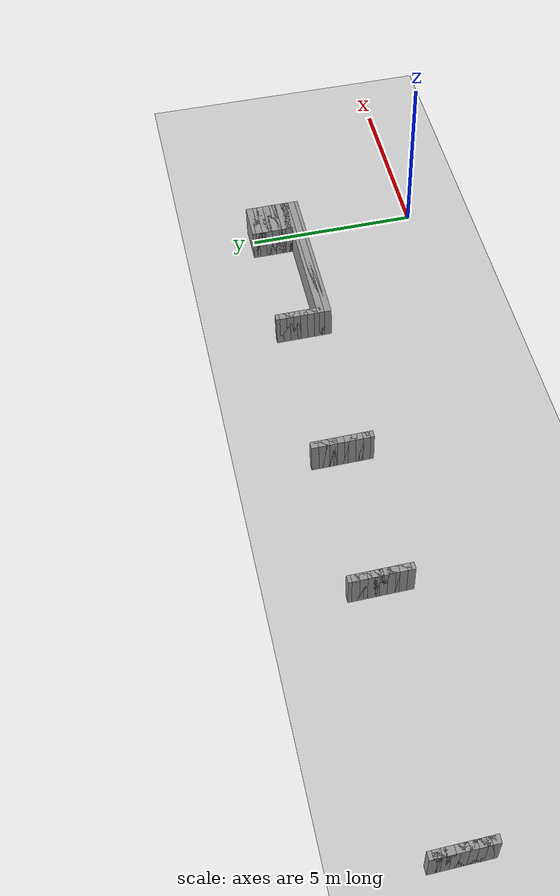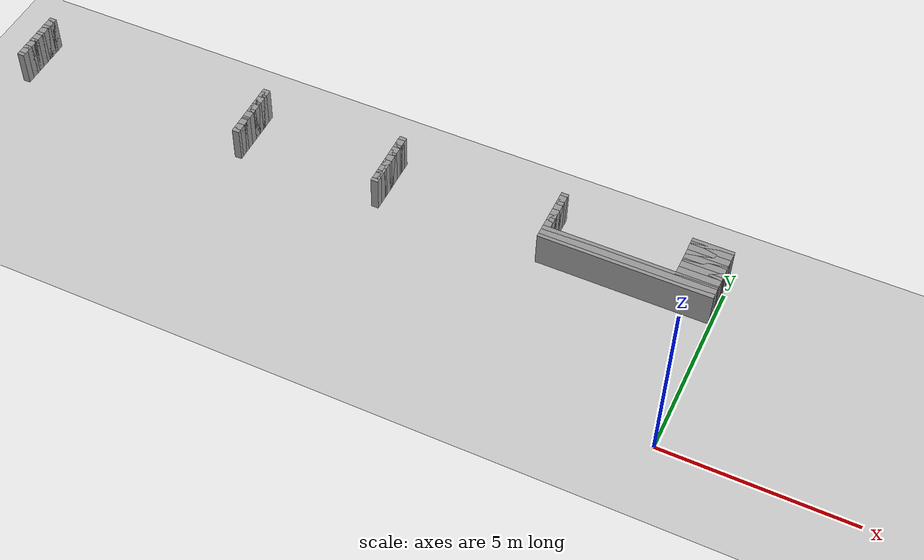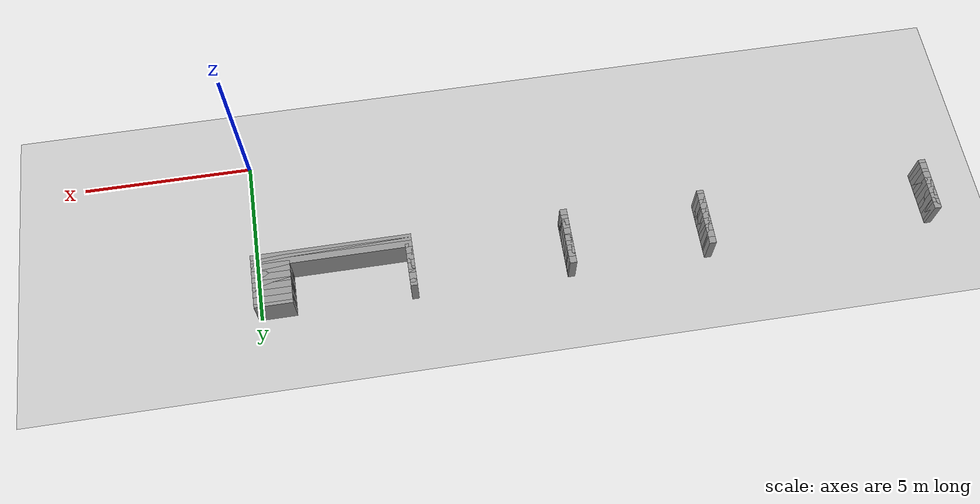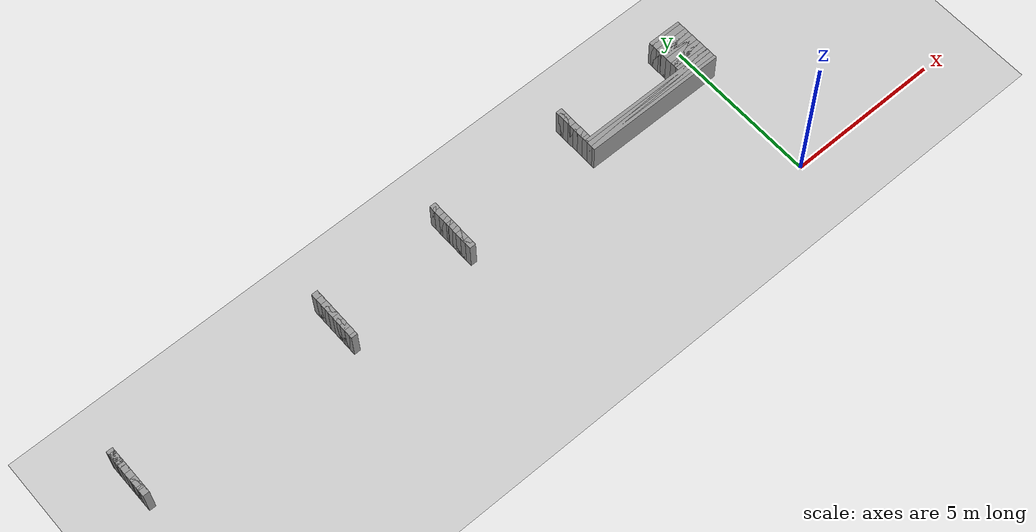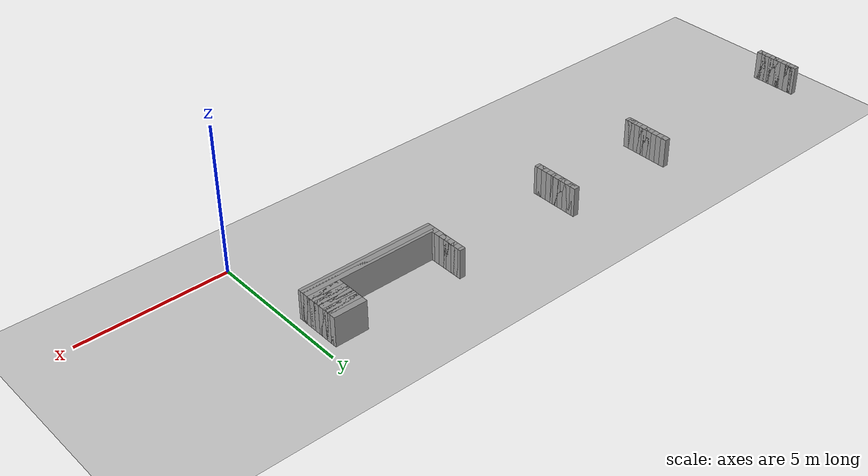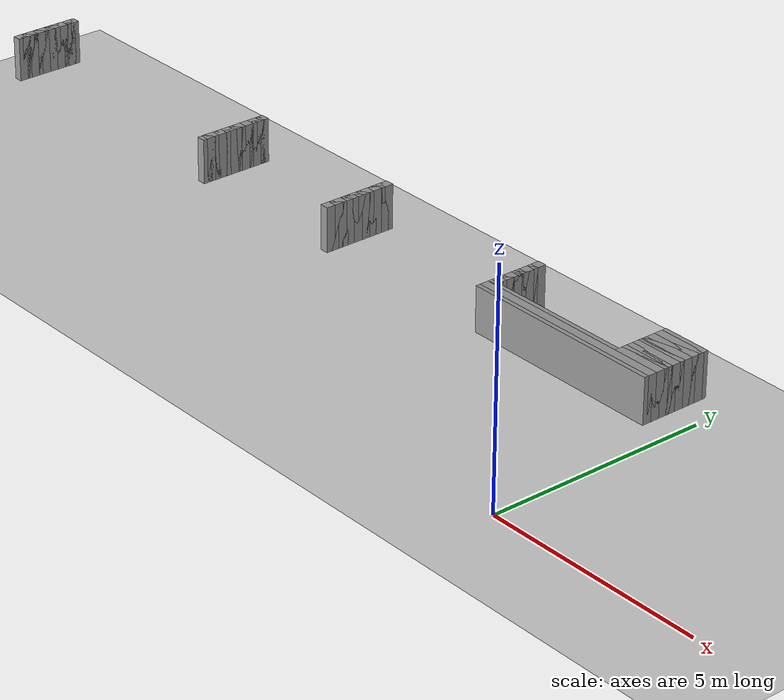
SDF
<sdf version="1.6">
 <world name="GridMap">
  <include><uri>model://sun</uri></include>
  <include><uri>model://ground_plane</uri></include>
  <model name="GridMap">
   <link name="Wall_(90.5,36.0)">
    <collision name="Wall_(90.5,36.0)_Collision">
     <geometry><box><size>0.2 0.2 1.0</size></box></geometry>
     <pose>-9.05 3.6 0.5 0 -0 0</pose>
    </collision>
    <visual name="Wall_(90.5,36.0)_Visual">
     <geometry><box><size>0.2 0.2 1.0</size></box></geometry>
     <pose>-9.05 3.6 0.5 0 -0 0</pose>
     <material>
      <script><uri>file://media/materials/scripts/gazebo.material</uri><name>Gazebo/Grey</name></script>
      <ambient>1 1 1 1</ambient>
     </material>
     <meta><layer>0</layer></meta>
    </visual>
    <pose>0 0 0.5 0 -0 0</pose>
   </link>
   <link name="Wall_(131.0,36.0)">
    <collision name="Wall_(131.0,36.0)_Collision">
     <geometry><box><size>0.2 0.2 1.0</size></box></geometry>
     <pose>-13.100000000000001 3.6 0.5 0 -0 0</pose>
    </collision>
    <visual name="Wall_(131.0,36.0)_Visual">
     <geometry><box><size>0.2 0.2 1.0</size></box></geometry>
     <pose>-13.100000000000001 3.6 0.5 0 -0 0</pose>
     <material>
      <script><uri>file://media/materials/scripts/gazebo.material</uri><name>Gazebo/Grey</name></script>
      <ambient>1 1 1 1</ambient>
     </material>
     <meta><layer>0</layer></meta>
    </visual>
    <pose>0 0 0.5 0 -0 0</pose>
   </link>
   <link name="Wall_(198.0,36.0)">
    <collision name="Wall_(198.0,36.0)_Collision">
     <geometry><box><size>0.2 0.2 1.0</size></box></geometry>
     <pose>-19.8 3.6 0.5 0 -0 0</pose>
    </collision>
    <visual name="Wall_(198.0,36.0)_Visual">
     <geometry><box><size>0.2 0.2 1.0</size></box></geometry>
     <pose>-19.8 3.6 0.5 0 -0 0</pose>
     <material>
      <script><uri>file://media/materials/scripts/gazebo.material</uri><name>Gazebo/Grey</name></script>
      <ambient>1 1 1 1</ambient>
     </material>
     <meta><layer>0</layer></meta>
    </visual>
    <pose>0 0 0.5 0 -0 0</pose>
   </link>
   <link name="Wall_(23.0,37.0)">
    <collision name="Wall_(23.0,37.0)_Collision">
     <geometry><box><size>4.6000000000000005 0.2 1.0</size></box></geometry>
     <pose>-2.3000000000000003 3.7 0.5 0 -0 0</pose>
    </collision>
    <visual name="Wall_(23.0,37.0)_Visual">
     <geometry><box><size>4.6000000000000005 0.2 1.0</size></box></geometry>
     <pose>-2.3000000000000003 3.7 0.5 0 -0 0</pose>
     <material>
      <script><uri>file://media/materials/scripts/gazebo.material</uri><name>Gazebo/Grey</name></script>
      <ambient>1 1 1 1</ambient>
     </material>
     <meta><layer>0</layer></meta>
    </visual>
    <pose>0 0 0.5 0 -0 0</pose>
   </link>
   <link name="Wall_(90.5,37.0)">
    <collision name="Wall_(90.5,37.0)_Collision">
     <geometry><box><size>0.2 0.2 1.0</size></box></geometry>
     <pose>-9.05 3.7 0.5 0 -0 0</pose>
    </collision>
    <visual name="Wall_(90.5,37.0)_Visual">
     <geometry><box><size>0.2 0.2 1.0</size></box></geometry>
     <pose>-9.05 3.7 0.5 0 -0 0</pose>
     <material>
      <script><uri>file://media/materials/scripts/gazebo.material</uri><name>Gazebo/Grey</name></script>
      <ambient>1 1 1 1</ambient>
     </material>
     <meta><layer>0</layer></meta>
    </visual>
    <pose>0 0 0.5 0 -0 0</pose>
   </link>
   <link name="Wall_(131.0,37.0)">
    <collision name="Wall_(131.0,37.0)_Collision">
     <geometry><box><size>0.2 0.2 1.0</size></box></geometry>
     <pose>-13.100000000000001 3.7 0.5 0 -0 0</pose>
    </collision>
    <visual name="Wall_(131.0,37.0)_Visual">
     <geometry><box><size>0.2 0.2 1.0</size></box></geometry>
     <pose>-13.100000000000001 3.7 0.5 0 -0 0</pose>
     <material>
      <script><uri>file://media/materials/scripts/gazebo.material</uri><name>Gazebo/Grey</name></script>
      <ambient>1 1 1 1</ambient>
     </material>
     <meta><layer>0</layer></meta>
    </visual>
    <pose>0 0 0.5 0 -0 0</pose>
   </link>
   <link name="Wall_(198.0,37.0)">
    <collision name="Wall_(198.0,37.0)_Collision">
     <geometry><box><size>0.2 0.2 1.0</size></box></geometry>
     <pose>-19.8 3.7 0.5 0 -0 0</pose>
    </collision>
    <visual name="Wall_(198.0,37.0)_Visual">
     <geometry><box><size>0.2 0.2 1.0</size></box></geometry>
     <pose>-19.8 3.7 0.5 0 -0 0</pose>
     <material>
      <script><uri>file://media/materials/scripts/gazebo.material</uri><name>Gazebo/Grey</name></script>
      <ambient>1 1 1 1</ambient>
     </material>
     <meta><layer>0</layer></meta>
    </visual>
    <pose>0 0 0.5 0 -0 0</pose>
   </link>
   <link name="Wall_(23.0,38.0)">
    <collision name="Wall_(23.0,38.0)_Collision">
     <geometry><box><size>4.6000000000000005 0.2 1.0</size></box></geometry>
     <pose>-2.3000000000000003 3.8000000000000003 0.5 0 -0 0</pose>
    </collision>
    <visual name="Wall_(23.0,38.0)_Visual">
     <geometry><box><size>4.6000000000000005 0.2 1.0</size></box></geometry>
     <pose>-2.3000000000000003 3.8000000000000003 0.5 0 -0 0</pose>
     <material>
      <script><uri>file://media/materials/scripts/gazebo.material</uri><name>Gazebo/Grey</name></script>
      <ambient>1 1 1 1</ambient>
     </material>
     <meta><layer>0</layer></meta>
    </visual>
    <pose>0 0 0.5 0 -0 0</pose>
   </link>
   <link name="Wall_(90.5,38.0)">
    <collision name="Wall_(90.5,38.0)_Collision">
     <geometry><box><size>0.2 0.2 1.0</size></box></geometry>
     <pose>-9.05 3.8000000000000003 0.5 0 -0 0</pose>
    </collision>
    <visual name="Wall_(90.5,38.0)_Visual">
     <geometry><box><size>0.2 0.2 1.0</size></box></geometry>
     <pose>-9.05 3.8000000000000003 0.5 0 -0 0</pose>
     <material>
      <script><uri>file://media/materials/scripts/gazebo.material</uri><name>Gazebo/Grey</name></script>
      <ambient>1 1 1 1</ambient>
     </material>
     <meta><layer>0</layer></meta>
    </visual>
    <pose>0 0 0.5 0 -0 0</pose>
   </link>
   <link name="Wall_(131.0,38.0)">
    <collision name="Wall_(131.0,38.0)_Collision">
     <geometry><box><size>0.2 0.2 1.0</size></box></geometry>
     <pose>-13.100000000000001 3.8000000000000003 0.5 0 -0 0</pose>
    </collision>
    <visual name="Wall_(131.0,38.0)_Visual">
     <geometry><box><size>0.2 0.2 1.0</size></box></geometry>
     <pose>-13.100000000000001 3.8000000000000003 0.5 0 -0 0</pose>
     <material>
      <script><uri>file://media/materials/scripts/gazebo.material</uri><name>Gazebo/Grey</name></script>
      <ambient>1 1 1 1</ambient>
     </material>
     <meta><layer>0</layer></meta>
    </visual>
    <pose>0 0 0.5 0 -0 0</pose>
   </link>
   <link name="Wall_(198.0,38.0)">
    <collision name="Wall_(198.0,38.0)_Collision">
     <geometry><box><size>0.2 0.2 1.0</size></box></geometry>
     <pose>-19.8 3.8000000000000003 0.5 0 -0 0</pose>
    </collision>
    <visual name="Wall_(198.0,38.0)_Visual">
     <geometry><box><size>0.2 0.2 1.0</size></box></geometry>
     <pose>-19.8 3.8000000000000003 0.5 0 -0 0</pose>
     <material>
      <script><uri>file://media/materials/scripts/gazebo.material</uri><name>Gazebo/Grey</name></script>
      <ambient>1 1 1 1</ambient>
     </material>
     <meta><layer>0</layer></meta>
    </visual>
    <pose>0 0 0.5 0 -0 0</pose>
   </link>
   <link name="Wall_(23.0,39.0)">
    <collision name="Wall_(23.0,39.0)_Collision">
     <geometry><box><size>4.6000000000000005 0.2 1.0</size></box></geometry>
     <pose>-2.3000000000000003 3.9000000000000004 0.5 0 -0 0</pose>
    </collision>
    <visual name="Wall_(23.0,39.0)_Visual">
     <geometry><box><size>4.6000000000000005 0.2 1.0</size></box></geometry>
     <pose>-2.3000000000000003 3.9000000000000004 0.5 0 -0 0</pose>
     <material>
      <script><uri>file://media/materials/scripts/gazebo.material</uri><name>Gazebo/Grey</name></script>
      <ambient>1 1 1 1</ambient>
     </material>
     <meta><layer>0</layer></meta>
    </visual>
    <pose>0 0 0.5 0 -0 0</pose>
   </link>
   <link name="Wall_(90.5,39.0)">
    <collision name="Wall_(90.5,39.0)_Collision">
     <geometry><box><size>0.2 0.2 1.0</size></box></geometry>
     <pose>-9.05 3.9000000000000004 0.5 0 -0 0</pose>
    </collision>
    <visual name="Wall_(90.5,39.0)_Visual">
     <geometry><box><size>0.2 0.2 1.0</size></box></geometry>
     <pose>-9.05 3.9000000000000004 0.5 0 -0 0</pose>
     <material>
      <script><uri>file://media/materials/scripts/gazebo.material</uri><name>Gazebo/Grey</name></script>
      <ambient>1 1 1 1</ambient>
     </material>
     <meta><layer>0</layer></meta>
    </visual>
    <pose>0 0 0.5 0 -0 0</pose>
   </link>
   <link name="Wall_(131.0,39.0)">
    <collision name="Wall_(131.0,39.0)_Collision">
     <geometry><box><size>0.2 0.2 1.0</size></box></geometry>
     <pose>-13.100000000000001 3.9000000000000004 0.5 0 -0 0</pose>
    </collision>
    <visual name="Wall_(131.0,39.0)_Visual">
     <geometry><box><size>0.2 0.2 1.0</size></box></geometry>
     <pose>-13.100000000000001 3.9000000000000004 0.5 0 -0 0</pose>
     <material>
      <script><uri>file://media/materials/scripts/gazebo.material</uri><name>Gazebo/Grey</name></script>
      <ambient>1 1 1 1</ambient>
     </material>
     <meta><layer>0</layer></meta>
    </visual>
    <pose>0 0 0.5 0 -0 0</pose>
   </link>
   <link name="Wall_(198.0,39.0)">
    <collision name="Wall_(198.0,39.0)_Collision">
     <geometry><box><size>0.2 0.2 1.0</size></box></geometry>
     <pose>-19.8 3.9000000000000004 0.5 0 -0 0</pose>
    </collision>
    <visual name="Wall_(198.0,39.0)_Visual">
     <geometry><box><size>0.2 0.2 1.0</size></box></geometry>
     <pose>-19.8 3.9000000000000004 0.5 0 -0 0</pose>
     <material>
      <script><uri>file://media/materials/scripts/gazebo.material</uri><name>Gazebo/Grey</name></script>
      <ambient>1 1 1 1</ambient>
     </material>
     <meta><layer>0</layer></meta>
    </visual>
    <pose>0 0 0.5 0 -0 0</pose>
   </link>
   <link name="Wall_(5.5,40.0)">
    <collision name="Wall_(5.5,40.0)_Collision">
     <geometry><box><size>1.1 0.2 1.0</size></box></geometry>
     <pose>-0.55 4.0 0.5 0 -0 0</pose>
    </collision>
    <visual name="Wall_(5.5,40.0)_Visual">
     <geometry><box><size>1.1 0.2 1.0</size></box></geometry>
     <pose>-0.55 4.0 0.5 0 -0 0</pose>
     <material>
      <script><uri>file://media/materials/scripts/gazebo.material</uri><name>Gazebo/Grey</name></script>
      <ambient>1 1 1 1</ambient>
     </material>
     <meta><layer>0</layer></meta>
    </visual>
    <pose>0 0 0.5 0 -0 0</pose>
   </link>
   <link name="Wall_(45.0,40.0)">
    <collision name="Wall_(45.0,40.0)_Collision">
     <geometry><box><size>0.2 0.2 1.0</size></box></geometry>
     <pose>-4.5 4.0 0.5 0 -0 0</pose>
    </collision>
    <visual name="Wall_(45.0,40.0)_Visual">
     <geometry><box><size>0.2 0.2 1.0</size></box></geometry>
     <pose>-4.5 4.0 0.5 0 -0 0</pose>
     <material>
      <script><uri>file://media/materials/scripts/gazebo.material</uri><name>Gazebo/Grey</name></script>
      <ambient>1 1 1 1</ambient>
     </material>
     <meta><layer>0</layer></meta>
    </visual>
    <pose>0 0 0.5 0 -0 0</pose>
   </link>
   <link name="Wall_(90.5,40.0)">
    <collision name="Wall_(90.5,40.0)_Collision">
     <geometry><box><size>0.2 0.2 1.0</size></box></geometry>
     <pose>-9.05 4.0 0.5 0 -0 0</pose>
    </collision>
    <visual name="Wall_(90.5,40.0)_Visual">
     <geometry><box><size>0.2 0.2 1.0</size></box></geometry>
     <pose>-9.05 4.0 0.5 0 -0 0</pose>
     <material>
      <script><uri>file://media/materials/scripts/gazebo.material</uri><name>Gazebo/Grey</name></script>
      <ambient>1 1 1 1</ambient>
     </material>
     <meta><layer>0</layer></meta>
    </visual>
    <pose>0 0 0.5 0 -0 0</pose>
   </link>
   <link name="Wall_(131.0,40.0)">
    <collision name="Wall_(131.0,40.0)_Collision">
     <geometry><box><size>0.2 0.2 1.0</size></box></geometry>
     <pose>-13.100000000000001 4.0 0.5 0 -0 0</pose>
    </collision>
    <visual name="Wall_(131.0,40.0)_Visual">
     <geometry><box><size>0.2 0.2 1.0</size></box></geometry>
     <pose>-13.100000000000001 4.0 0.5 0 -0 0</pose>
     <material>
      <script><uri>file://media/materials/scripts/gazebo.material</uri><name>Gazebo/Grey</name></script>
      <ambient>1 1 1 1</ambient>
     </material>
     <meta><layer>0</layer></meta>
    </visual>
    <pose>0 0 0.5 0 -0 0</pose>
   </link>
   <link name="Wall_(198.0,40.0)">
    <collision name="Wall_(198.0,40.0)_Collision">
     <geometry><box><size>0.2 0.2 1.0</size></box></geometry>
     <pose>-19.8 4.0 0.5 0 -0 0</pose>
    </collision>
    <visual name="Wall_(198.0,40.0)_Visual">
     <geometry><box><size>0.2 0.2 1.0</size></box></geometry>
     <pose>-19.8 4.0 0.5 0 -0 0</pose>
     <material>
      <script><uri>file://media/materials/scripts/gazebo.material</uri><name>Gazebo/Grey</name></script>
      <ambient>1 1 1 1</ambient>
     </material>
     <meta><layer>0</layer></meta>
    </visual>
    <pose>0 0 0.5 0 -0 0</pose>
   </link>
   <link name="Wall_(5.5,41.0)">
    <collision name="Wall_(5.5,41.0)_Collision">
     <geometry><box><size>1.1 0.2 1.0</size></box></geometry>
     <pose>-0.55 4.1000000000000005 0.5 0 -0 0</pose>
    </collision>
    <visual name="Wall_(5.5,41.0)_Visual">
     <geometry><box><size>1.1 0.2 1.0</size></box></geometry>
     <pose>-0.55 4.1000000000000005 0.5 0 -0 0</pose>
     <material>
      <script><uri>file://media/materials/scripts/gazebo.material</uri><name>Gazebo/Grey</name></script>
      <ambient>1 1 1 1</ambient>
     </material>
     <meta><layer>0</layer></meta>
    </visual>
    <pose>0 0 0.5 0 -0 0</pose>
   </link>
   <link name="Wall_(45.0,41.0)">
    <collision name="Wall_(45.0,41.0)_Collision">
     <geometry><box><size>0.2 0.2 1.0</size></box></geometry>
     <pose>-4.5 4.1000000000000005 0.5 0 -0 0</pose>
    </collision>
    <visual name="Wall_(45.0,41.0)_Visual">
     <geometry><box><size>0.2 0.2 1.0</size></box></geometry>
     <pose>-4.5 4.1000000000000005 0.5 0 -0 0</pose>
     <material>
      <script><uri>file://media/materials/scripts/gazebo.material</uri><name>Gazebo/Grey</name></script>
      <ambient>1 1 1 1</ambient>
     </material>
     <meta><layer>0</layer></meta>
    </visual>
    <pose>0 0 0.5 0 -0 0</pose>
   </link>
   <link name="Wall_(90.5,41.0)">
    <collision name="Wall_(90.5,41.0)_Collision">
     <geometry><box><size>0.2 0.2 1.0</size></box></geometry>
     <pose>-9.05 4.1000000000000005 0.5 0 -0 0</pose>
    </collision>
    <visual name="Wall_(90.5,41.0)_Visual">
     <geometry><box><size>0.2 0.2 1.0</size></box></geometry>
     <pose>-9.05 4.1000000000000005 0.5 0 -0 0</pose>
     <material>
      <script><uri>file://media/materials/scripts/gazebo.material</uri><name>Gazebo/Grey</name></script>
      <ambient>1 1 1 1</ambient>
     </material>
     <meta><layer>0</layer></meta>
    </visual>
    <pose>0 0 0.5 0 -0 0</pose>
   </link>
   <link name="Wall_(131.0,41.0)">
    <collision name="Wall_(131.0,41.0)_Collision">
     <geometry><box><size>0.2 0.2 1.0</size></box></geometry>
     <pose>-13.100000000000001 4.1000000000000005 0.5 0 -0 0</pose>
    </collision>
    <visual name="Wall_(131.0,41.0)_Visual">
     <geometry><box><size>0.2 0.2 1.0</size></box></geometry>
     <pose>-13.100000000000001 4.1000000000000005 0.5 0 -0 0</pose>
     <material>
      <script><uri>file://media/materials/scripts/gazebo.material</uri><name>Gazebo/Grey</name></script>
      <ambient>1 1 1 1</ambient>
     </material>
     <meta><layer>0</layer></meta>
    </visual>
    <pose>0 0 0.5 0 -0 0</pose>
   </link>
   <link name="Wall_(198.0,41.0)">
    <collision name="Wall_(198.0,41.0)_Collision">
     <geometry><box><size>0.2 0.2 1.0</size></box></geometry>
     <pose>-19.8 4.1000000000000005 0.5 0 -0 0</pose>
    </collision>
    <visual name="Wall_(198.0,41.0)_Visual">
     <geometry><box><size>0.2 0.2 1.0</size></box></geometry>
     <pose>-19.8 4.1000000000000005 0.5 0 -0 0</pose>
     <material>
      <script><uri>file://media/materials/scripts/gazebo.material</uri><name>Gazebo/Grey</name></script>
      <ambient>1 1 1 1</ambient>
     </material>
     <meta><layer>0</layer></meta>
    </visual>
    <pose>0 0 0.5 0 -0 0</pose>
   </link>
   <link name="Wall_(5.5,42.0)">
    <collision name="Wall_(5.5,42.0)_Collision">
     <geometry><box><size>1.1 0.2 1.0</size></box></geometry>
     <pose>-0.55 4.2 0.5 0 -0 0</pose>
    </collision>
    <visual name="Wall_(5.5,42.0)_Visual">
     <geometry><box><size>1.1 0.2 1.0</size></box></geometry>
     <pose>-0.55 4.2 0.5 0 -0 0</pose>
     <material>
      <script><uri>file://media/materials/scripts/gazebo.material</uri><name>Gazebo/Grey</name></script>
      <ambient>1 1 1 1</ambient>
     </material>
     <meta><layer>0</layer></meta>
    </visual>
    <pose>0 0 0.5 0 -0 0</pose>
   </link>
   <link name="Wall_(45.0,42.0)">
    <collision name="Wall_(45.0,42.0)_Collision">
     <geometry><box><size>0.2 0.2 1.0</size></box></geometry>
     <pose>-4.5 4.2 0.5 0 -0 0</pose>
    </collision>
    <visual name="Wall_(45.0,42.0)_Visual">
     <geometry><box><size>0.2 0.2 1.0</size></box></geometry>
     <pose>-4.5 4.2 0.5 0 -0 0</pose>
     <material>
      <script><uri>file://media/materials/scripts/gazebo.material</uri><name>Gazebo/Grey</name></script>
      <ambient>1 1 1 1</ambient>
     </material>
     <meta><layer>0</layer></meta>
    </visual>
    <pose>0 0 0.5 0 -0 0</pose>
   </link>
   <link name="Wall_(90.5,42.0)">
    <collision name="Wall_(90.5,42.0)_Collision">
     <geometry><box><size>0.2 0.2 1.0</size></box></geometry>
     <pose>-9.05 4.2 0.5 0 -0 0</pose>
    </collision>
    <visual name="Wall_(90.5,42.0)_Visual">
     <geometry><box><size>0.2 0.2 1.0</size></box></geometry>
     <pose>-9.05 4.2 0.5 0 -0 0</pose>
     <material>
      <script><uri>file://media/materials/scripts/gazebo.material</uri><name>Gazebo/Grey</name></script>
      <ambient>1 1 1 1</ambient>
     </material>
     <meta><layer>0</layer></meta>
    </visual>
    <pose>0 0 0.5 0 -0 0</pose>
   </link>
   <link name="Wall_(131.0,42.0)">
    <collision name="Wall_(131.0,42.0)_Collision">
     <geometry><box><size>0.2 0.2 1.0</size></box></geometry>
     <pose>-13.100000000000001 4.2 0.5 0 -0 0</pose>
    </collision>
    <visual name="Wall_(131.0,42.0)_Visual">
     <geometry><box><size>0.2 0.2 1.0</size></box></geometry>
     <pose>-13.100000000000001 4.2 0.5 0 -0 0</pose>
     <material>
      <script><uri>file://media/materials/scripts/gazebo.material</uri><name>Gazebo/Grey</name></script>
      <ambient>1 1 1 1</ambient>
     </material>
     <meta><layer>0</layer></meta>
    </visual>
    <pose>0 0 0.5 0 -0 0</pose>
   </link>
   <link name="Wall_(198.0,42.0)">
    <collision name="Wall_(198.0,42.0)_Collision">
     <geometry><box><size>0.2 0.2 1.0</size></box></geometry>
     <pose>-19.8 4.2 0.5 0 -0 0</pose>
    </collision>
    <visual name="Wall_(198.0,42.0)_Visual">
     <geometry><box><size>0.2 0.2 1.0</size></box></geometry>
     <pose>-19.8 4.2 0.5 0 -0 0</pose>
     <material>
      <script><uri>file://media/materials/scripts/gazebo.material</uri><name>Gazebo/Grey</name></script>
      <ambient>1 1 1 1</ambient>
     </material>
     <meta><layer>0</layer></meta>
    </visual>
    <pose>0 0 0.5 0 -0 0</pose>
   </link>
   <link name="Wall_(5.5,43.0)">
    <collision name="Wall_(5.5,43.0)_Collision">
     <geometry><box><size>1.1 0.2 1.0</size></box></geometry>
     <pose>-0.55 4.3 0.5 0 -0 0</pose>
    </collision>
    <visual name="Wall_(5.5,43.0)_Visual">
     <geometry><box><size>1.1 0.2 1.0</size></box></geometry>
     <pose>-0.55 4.3 0.5 0 -0 0</pose>
     <material>
      <script><uri>file://media/materials/scripts/gazebo.material</uri><name>Gazebo/Grey</name></script>
      <ambient>1 1 1 1</ambient>
     </material>
     <meta><layer>0</layer></meta>
    </visual>
    <pose>0 0 0.5 0 -0 0</pose>
   </link>
   <link name="Wall_(45.0,43.0)">
    <collision name="Wall_(45.0,43.0)_Collision">
     <geometry><box><size>0.2 0.2 1.0</size></box></geometry>
     <pose>-4.5 4.3 0.5 0 -0 0</pose>
    </collision>
    <visual name="Wall_(45.0,43.0)_Visual">
     <geometry><box><size>0.2 0.2 1.0</size></box></geometry>
     <pose>-4.5 4.3 0.5 0 -0 0</pose>
     <material>
      <script><uri>file://media/materials/scripts/gazebo.material</uri><name>Gazebo/Grey</name></script>
      <ambient>1 1 1 1</ambient>
     </material>
     <meta><layer>0</layer></meta>
    </visual>
    <pose>0 0 0.5 0 -0 0</pose>
   </link>
   <link name="Wall_(90.5,43.0)">
    <collision name="Wall_(90.5,43.0)_Collision">
     <geometry><box><size>0.2 0.2 1.0</size></box></geometry>
     <pose>-9.05 4.3 0.5 0 -0 0</pose>
    </collision>
    <visual name="Wall_(90.5,43.0)_Visual">
     <geometry><box><size>0.2 0.2 1.0</size></box></geometry>
     <pose>-9.05 4.3 0.5 0 -0 0</pose>
     <material>
      <script><uri>file://media/materials/scripts/gazebo.material</uri><name>Gazebo/Grey</name></script>
      <ambient>1 1 1 1</ambient>
     </material>
     <meta><layer>0</layer></meta>
    </visual>
    <pose>0 0 0.5 0 -0 0</pose>
   </link>
   <link name="Wall_(131.0,43.0)">
    <collision name="Wall_(131.0,43.0)_Collision">
     <geometry><box><size>0.2 0.2 1.0</size></box></geometry>
     <pose>-13.100000000000001 4.3 0.5 0 -0 0</pose>
    </collision>
    <visual name="Wall_(131.0,43.0)_Visual">
     <geometry><box><size>0.2 0.2 1.0</size></box></geometry>
     <pose>-13.100000000000001 4.3 0.5 0 -0 0</pose>
     <material>
      <script><uri>file://media/materials/scripts/gazebo.material</uri><name>Gazebo/Grey</name></script>
      <ambient>1 1 1 1</ambient>
     </material>
     <meta><layer>0</layer></meta>
    </visual>
    <pose>0 0 0.5 0 -0 0</pose>
   </link>
   <link name="Wall_(198.0,43.0)">
    <collision name="Wall_(198.0,43.0)_Collision">
     <geometry><box><size>0.2 0.2 1.0</size></box></geometry>
     <pose>-19.8 4.3 0.5 0 -0 0</pose>
    </collision>
    <visual name="Wall_(198.0,43.0)_Visual">
     <geometry><box><size>0.2 0.2 1.0</size></box></geometry>
     <pose>-19.8 4.3 0.5 0 -0 0</pose>
     <material>
      <script><uri>file://media/materials/scripts/gazebo.material</uri><name>Gazebo/Grey</name></script>
      <ambient>1 1 1 1</ambient>
     </material>
     <meta><layer>0</layer></meta>
    </visual>
    <pose>0 0 0.5 0 -0 0</pose>
   </link>
   <link name="Wall_(5.5,44.0)">
    <collision name="Wall_(5.5,44.0)_Collision">
     <geometry><box><size>1.1 0.2 1.0</size></box></geometry>
     <pose>-0.55 4.4 0.5 0 -0 0</pose>
    </collision>
    <visual name="Wall_(5.5,44.0)_Visual">
     <geometry><box><size>1.1 0.2 1.0</size></box></geometry>
     <pose>-0.55 4.4 0.5 0 -0 0</pose>
     <material>
      <script><uri>file://media/materials/scripts/gazebo.material</uri><name>Gazebo/Grey</name></script>
      <ambient>1 1 1 1</ambient>
     </material>
     <meta><layer>0</layer></meta>
    </visual>
    <pose>0 0 0.5 0 -0 0</pose>
   </link>
   <link name="Wall_(45.0,44.0)">
    <collision name="Wall_(45.0,44.0)_Collision">
     <geometry><box><size>0.2 0.2 1.0</size></box></geometry>
     <pose>-4.5 4.4 0.5 0 -0 0</pose>
    </collision>
    <visual name="Wall_(45.0,44.0)_Visual">
     <geometry><box><size>0.2 0.2 1.0</size></box></geometry>
     <pose>-4.5 4.4 0.5 0 -0 0</pose>
     <material>
      <script><uri>file://media/materials/scripts/gazebo.material</uri><name>Gazebo/Grey</name></script>
      <ambient>1 1 1 1</ambient>
     </material>
     <meta><layer>0</layer></meta>
    </visual>
    <pose>0 0 0.5 0 -0 0</pose>
   </link>
   <link name="Wall_(90.5,44.0)">
    <collision name="Wall_(90.5,44.0)_Collision">
     <geometry><box><size>0.2 0.2 1.0</size></box></geometry>
     <pose>-9.05 4.4 0.5 0 -0 0</pose>
    </collision>
    <visual name="Wall_(90.5,44.0)_Visual">
     <geometry><box><size>0.2 0.2 1.0</size></box></geometry>
     <pose>-9.05 4.4 0.5 0 -0 0</pose>
     <material>
      <script><uri>file://media/materials/scripts/gazebo.material</uri><name>Gazebo/Grey</name></script>
      <ambient>1 1 1 1</ambient>
     </material>
     <meta><layer>0</layer></meta>
    </visual>
    <pose>0 0 0.5 0 -0 0</pose>
   </link>
   <link name="Wall_(131.0,44.0)">
    <collision name="Wall_(131.0,44.0)_Collision">
     <geometry><box><size>0.2 0.2 1.0</size></box></geometry>
     <pose>-13.100000000000001 4.4 0.5 0 -0 0</pose>
    </collision>
    <visual name="Wall_(131.0,44.0)_Visual">
     <geometry><box><size>0.2 0.2 1.0</size></box></geometry>
     <pose>-13.100000000000001 4.4 0.5 0 -0 0</pose>
     <material>
      <script><uri>file://media/materials/scripts/gazebo.material</uri><name>Gazebo/Grey</name></script>
      <ambient>1 1 1 1</ambient>
     </material>
     <meta><layer>0</layer></meta>
    </visual>
    <pose>0 0 0.5 0 -0 0</pose>
   </link>
   <link name="Wall_(198.0,44.0)">
    <collision name="Wall_(198.0,44.0)_Collision">
     <geometry><box><size>0.2 0.2 1.0</size></box></geometry>
     <pose>-19.8 4.4 0.5 0 -0 0</pose>
    </collision>
    <visual name="Wall_(198.0,44.0)_Visual">
     <geometry><box><size>0.2 0.2 1.0</size></box></geometry>
     <pose>-19.8 4.4 0.5 0 -0 0</pose>
     <material>
      <script><uri>file://media/materials/scripts/gazebo.material</uri><name>Gazebo/Grey</name></script>
      <ambient>1 1 1 1</ambient>
     </material>
     <meta><layer>0</layer></meta>
    </visual>
    <pose>0 0 0.5 0 -0 0</pose>
   </link>
   <link name="Wall_(5.5,45.0)">
    <collision name="Wall_(5.5,45.0)_Collision">
     <geometry><box><size>1.1 0.2 1.0</size></box></geometry>
     <pose>-0.55 4.5 0.5 0 -0 0</pose>
    </collision>
    <visual name="Wall_(5.5,45.0)_Visual">
     <geometry><box><size>1.1 0.2 1.0</size></box></geometry>
     <pose>-0.55 4.5 0.5 0 -0 0</pose>
     <material>
      <script><uri>file://media/materials/scripts/gazebo.material</uri><name>Gazebo/Grey</name></script>
      <ambient>1 1 1 1</ambient>
     </material>
     <meta><layer>0</layer></meta>
    </visual>
    <pose>0 0 0.5 0 -0 0</pose>
   </link>
   <link name="Wall_(45.0,45.0)">
    <collision name="Wall_(45.0,45.0)_Collision">
     <geometry><box><size>0.2 0.2 1.0</size></box></geometry>
     <pose>-4.5 4.5 0.5 0 -0 0</pose>
    </collision>
    <visual name="Wall_(45.0,45.0)_Visual">
     <geometry><box><size>0.2 0.2 1.0</size></box></geometry>
     <pose>-4.5 4.5 0.5 0 -0 0</pose>
     <material>
      <script><uri>file://media/materials/scripts/gazebo.material</uri><name>Gazebo/Grey</name></script>
      <ambient>1 1 1 1</ambient>
     </material>
     <meta><layer>0</layer></meta>
    </visual>
    <pose>0 0 0.5 0 -0 0</pose>
   </link>
   <link name="Wall_(90.5,45.0)">
    <collision name="Wall_(90.5,45.0)_Collision">
     <geometry><box><size>0.2 0.2 1.0</size></box></geometry>
     <pose>-9.05 4.5 0.5 0 -0 0</pose>
    </collision>
    <visual name="Wall_(90.5,45.0)_Visual">
     <geometry><box><size>0.2 0.2 1.0</size></box></geometry>
     <pose>-9.05 4.5 0.5 0 -0 0</pose>
     <material>
      <script><uri>file://media/materials/scripts/gazebo.material</uri><name>Gazebo/Grey</name></script>
      <ambient>1 1 1 1</ambient>
     </material>
     <meta><layer>0</layer></meta>
    </visual>
    <pose>0 0 0.5 0 -0 0</pose>
   </link>
   <link name="Wall_(131.0,45.0)">
    <collision name="Wall_(131.0,45.0)_Collision">
     <geometry><box><size>0.2 0.2 1.0</size></box></geometry>
     <pose>-13.100000000000001 4.5 0.5 0 -0 0</pose>
    </collision>
    <visual name="Wall_(131.0,45.0)_Visual">
     <geometry><box><size>0.2 0.2 1.0</size></box></geometry>
     <pose>-13.100000000000001 4.5 0.5 0 -0 0</pose>
     <material>
      <script><uri>file://media/materials/scripts/gazebo.material</uri><name>Gazebo/Grey</name></script>
      <ambient>1 1 1 1</ambient>
     </material>
     <meta><layer>0</layer></meta>
    </visual>
    <pose>0 0 0.5 0 -0 0</pose>
   </link>
   <link name="Wall_(198.0,45.0)">
    <collision name="Wall_(198.0,45.0)_Collision">
     <geometry><box><size>0.2 0.2 1.0</size></box></geometry>
     <pose>-19.8 4.5 0.5 0 -0 0</pose>
    </collision>
    <visual name="Wall_(198.0,45.0)_Visual">
     <geometry><box><size>0.2 0.2 1.0</size></box></geometry>
     <pose>-19.8 4.5 0.5 0 -0 0</pose>
     <material>
      <script><uri>file://media/materials/scripts/gazebo.material</uri><name>Gazebo/Grey</name></script>
      <ambient>1 1 1 1</ambient>
     </material>
     <meta><layer>0</layer></meta>
    </visual>
    <pose>0 0 0.5 0 -0 0</pose>
   </link>
   <link name="Wall_(5.5,46.0)">
    <collision name="Wall_(5.5,46.0)_Collision">
     <geometry><box><size>1.1 0.2 1.0</size></box></geometry>
     <pose>-0.55 4.6000000000000005 0.5 0 -0 0</pose>
    </collision>
    <visual name="Wall_(5.5,46.0)_Visual">
     <geometry><box><size>1.1 0.2 1.0</size></box></geometry>
     <pose>-0.55 4.6000000000000005 0.5 0 -0 0</pose>
     <material>
      <script><uri>file://media/materials/scripts/gazebo.material</uri><name>Gazebo/Grey</name></script>
      <ambient>1 1 1 1</ambient>
     </material>
     <meta><layer>0</layer></meta>
    </visual>
    <pose>0 0 0.5 0 -0 0</pose>
   </link>
   <link name="Wall_(45.0,46.0)">
    <collision name="Wall_(45.0,46.0)_Collision">
     <geometry><box><size>0.2 0.2 1.0</size></box></geometry>
     <pose>-4.5 4.6000000000000005 0.5 0 -0 0</pose>
    </collision>
    <visual name="Wall_(45.0,46.0)_Visual">
     <geometry><box><size>0.2 0.2 1.0</size></box></geometry>
     <pose>-4.5 4.6000000000000005 0.5 0 -0 0</pose>
     <material>
      <script><uri>file://media/materials/scripts/gazebo.material</uri><name>Gazebo/Grey</name></script>
      <ambient>1 1 1 1</ambient>
     </material>
     <meta><layer>0</layer></meta>
    </visual>
    <pose>0 0 0.5 0 -0 0</pose>
   </link>
   <link name="Wall_(90.5,46.0)">
    <collision name="Wall_(90.5,46.0)_Collision">
     <geometry><box><size>0.2 0.2 1.0</size></box></geometry>
     <pose>-9.05 4.6000000000000005 0.5 0 -0 0</pose>
    </collision>
    <visual name="Wall_(90.5,46.0)_Visual">
     <geometry><box><size>0.2 0.2 1.0</size></box></geometry>
     <pose>-9.05 4.6000000000000005 0.5 0 -0 0</pose>
     <material>
      <script><uri>file://media/materials/scripts/gazebo.material</uri><name>Gazebo/Grey</name></script>
      <ambient>1 1 1 1</ambient>
     </material>
     <meta><layer>0</layer></meta>
    </visual>
    <pose>0 0 0.5 0 -0 0</pose>
   </link>
   <link name="Wall_(131.0,46.0)">
    <collision name="Wall_(131.0,46.0)_Collision">
     <geometry><box><size>0.2 0.2 1.0</size></box></geometry>
     <pose>-13.100000000000001 4.6000000000000005 0.5 0 -0 0</pose>
    </collision>
    <visual name="Wall_(131.0,46.0)_Visual">
     <geometry><box><size>0.2 0.2 1.0</size></box></geometry>
     <pose>-13.100000000000001 4.6000000000000005 0.5 0 -0 0</pose>
     <material>
      <script><uri>file://media/materials/scripts/gazebo.material</uri><name>Gazebo/Grey</name></script>
      <ambient>1 1 1 1</ambient>
     </material>
     <meta><layer>0</layer></meta>
    </visual>
    <pose>0 0 0.5 0 -0 0</pose>
   </link>
   <link name="Wall_(198.0,46.0)">
    <collision name="Wall_(198.0,46.0)_Collision">
     <geometry><box><size>0.2 0.2 1.0</size></box></geometry>
     <pose>-19.8 4.6000000000000005 0.5 0 -0 0</pose>
    </collision>
    <visual name="Wall_(198.0,46.0)_Visual">
     <geometry><box><size>0.2 0.2 1.0</size></box></geometry>
     <pose>-19.8 4.6000000000000005 0.5 0 -0 0</pose>
     <material>
      <script><uri>file://media/materials/scripts/gazebo.material</uri><name>Gazebo/Grey</name></script>
      <ambient>1 1 1 1</ambient>
     </material>
     <meta><layer>0</layer></meta>
    </visual>
    <pose>0 0 0.5 0 -0 0</pose>
   </link>
   <link name="Wall_(5.5,47.0)">
    <collision name="Wall_(5.5,47.0)_Collision">
     <geometry><box><size>1.1 0.2 1.0</size></box></geometry>
     <pose>-0.55 4.7 0.5 0 -0 0</pose>
    </collision>
    <visual name="Wall_(5.5,47.0)_Visual">
     <geometry><box><size>1.1 0.2 1.0</size></box></geometry>
     <pose>-0.55 4.7 0.5 0 -0 0</pose>
     <material>
      <script><uri>file://media/materials/scripts/gazebo.material</uri><name>Gazebo/Grey</name></script>
      <ambient>1 1 1 1</ambient>
     </material>
     <meta><layer>0</layer></meta>
    </visual>
    <pose>0 0 0.5 0 -0 0</pose>
   </link>
   <link name="Wall_(45.0,47.0)">
    <collision name="Wall_(45.0,47.0)_Collision">
     <geometry><box><size>0.2 0.2 1.0</size></box></geometry>
     <pose>-4.5 4.7 0.5 0 -0 0</pose>
    </collision>
    <visual name="Wall_(45.0,47.0)_Visual">
     <geometry><box><size>0.2 0.2 1.0</size></box></geometry>
     <pose>-4.5 4.7 0.5 0 -0 0</pose>
     <material>
      <script><uri>file://media/materials/scripts/gazebo.material</uri><name>Gazebo/Grey</name></script>
      <ambient>1 1 1 1</ambient>
     </material>
     <meta><layer>0</layer></meta>
    </visual>
    <pose>0 0 0.5 0 -0 0</pose>
   </link>
   <link name="Wall_(90.5,47.0)">
    <collision name="Wall_(90.5,47.0)_Collision">
     <geometry><box><size>0.2 0.2 1.0</size></box></geometry>
     <pose>-9.05 4.7 0.5 0 -0 0</pose>
    </collision>
    <visual name="Wall_(90.5,47.0)_Visual">
     <geometry><box><size>0.2 0.2 1.0</size></box></geometry>
     <pose>-9.05 4.7 0.5 0 -0 0</pose>
     <material>
      <script><uri>file://media/materials/scripts/gazebo.material</uri><name>Gazebo/Grey</name></script>
      <ambient>1 1 1 1</ambient>
     </material>
     <meta><layer>0</layer></meta>
    </visual>
    <pose>0 0 0.5 0 -0 0</pose>
   </link>
   <link name="Wall_(131.0,47.0)">
    <collision name="Wall_(131.0,47.0)_Collision">
     <geometry><box><size>0.2 0.2 1.0</size></box></geometry>
     <pose>-13.100000000000001 4.7 0.5 0 -0 0</pose>
    </collision>
    <visual name="Wall_(131.0,47.0)_Visual">
     <geometry><box><size>0.2 0.2 1.0</size></box></geometry>
     <pose>-13.100000000000001 4.7 0.5 0 -0 0</pose>
     <material>
      <script><uri>file://media/materials/scripts/gazebo.material</uri><name>Gazebo/Grey</name></script>
      <ambient>1 1 1 1</ambient>
     </material>
     <meta><layer>0</layer></meta>
    </visual>
    <pose>0 0 0.5 0 -0 0</pose>
   </link>
   <link name="Wall_(198.0,47.0)">
    <collision name="Wall_(198.0,47.0)_Collision">
     <geometry><box><size>0.2 0.2 1.0</size></box></geometry>
     <pose>-19.8 4.7 0.5 0 -0 0</pose>
    </collision>
    <visual name="Wall_(198.0,47.0)_Visual">
     <geometry><box><size>0.2 0.2 1.0</size></box></geometry>
     <pose>-19.8 4.7 0.5 0 -0 0</pose>
     <material>
      <script><uri>file://media/materials/scripts/gazebo.material</uri><name>Gazebo/Grey</name></script>
      <ambient>1 1 1 1</ambient>
     </material>
     <meta><layer>0</layer></meta>
    </visual>
    <pose>0 0 0.5 0 -0 0</pose>
   </link>
   <link name="Wall_(5.5,48.0)">
    <collision name="Wall_(5.5,48.0)_Collision">
     <geometry><box><size>1.1 0.2 1.0</size></box></geometry>
     <pose>-0.55 4.800000000000001 0.5 0 -0 0</pose>
    </collision>
    <visual name="Wall_(5.5,48.0)_Visual">
     <geometry><box><size>1.1 0.2 1.0</size></box></geometry>
     <pose>-0.55 4.800000000000001 0.5 0 -0 0</pose>
     <material>
      <script><uri>file://media/materials/scripts/gazebo.material</uri><name>Gazebo/Grey</name></script>
      <ambient>1 1 1 1</ambient>
     </material>
     <meta><layer>0</layer></meta>
    </visual>
    <pose>0 0 0.5 0 -0 0</pose>
   </link>
   <link name="Wall_(45.0,48.0)">
    <collision name="Wall_(45.0,48.0)_Collision">
     <geometry><box><size>0.2 0.2 1.0</size></box></geometry>
     <pose>-4.5 4.800000000000001 0.5 0 -0 0</pose>
    </collision>
    <visual name="Wall_(45.0,48.0)_Visual">
     <geometry><box><size>0.2 0.2 1.0</size></box></geometry>
     <pose>-4.5 4.800000000000001 0.5 0 -0 0</pose>
     <material>
      <script><uri>file://media/materials/scripts/gazebo.material</uri><name>Gazebo/Grey</name></script>
      <ambient>1 1 1 1</ambient>
     </material>
     <meta><layer>0</layer></meta>
    </visual>
    <pose>0 0 0.5 0 -0 0</pose>
   </link>
   <link name="Wall_(90.5,48.0)">
    <collision name="Wall_(90.5,48.0)_Collision">
     <geometry><box><size>0.2 0.2 1.0</size></box></geometry>
     <pose>-9.05 4.800000000000001 0.5 0 -0 0</pose>
    </collision>
    <visual name="Wall_(90.5,48.0)_Visual">
     <geometry><box><size>0.2 0.2 1.0</size></box></geometry>
     <pose>-9.05 4.800000000000001 0.5 0 -0 0</pose>
     <material>
      <script><uri>file://media/materials/scripts/gazebo.material</uri><name>Gazebo/Grey</name></script>
      <ambient>1 1 1 1</ambient>
     </material>
     <meta><layer>0</layer></meta>
    </visual>
    <pose>0 0 0.5 0 -0 0</pose>
   </link>
   <link name="Wall_(131.0,48.0)">
    <collision name="Wall_(131.0,48.0)_Collision">
     <geometry><box><size>0.2 0.2 1.0</size></box></geometry>
     <pose>-13.100000000000001 4.800000000000001 0.5 0 -0 0</pose>
    </collision>
    <visual name="Wall_(131.0,48.0)_Visual">
     <geometry><box><size>0.2 0.2 1.0</size></box></geometry>
     <pose>-13.100000000000001 4.800000000000001 0.5 0 -0 0</pose>
     <material>
      <script><uri>file://media/materials/scripts/gazebo.material</uri><name>Gazebo/Grey</name></script>
      <ambient>1 1 1 1</ambient>
     </material>
     <meta><layer>0</layer></meta>
    </visual>
    <pose>0 0 0.5 0 -0 0</pose>
   </link>
   <link name="Wall_(198.0,48.0)">
    <collision name="Wall_(198.0,48.0)_Collision">
     <geometry><box><size>0.2 0.2 1.0</size></box></geometry>
     <pose>-19.8 4.800000000000001 0.5 0 -0 0</pose>
    </collision>
    <visual name="Wall_(198.0,48.0)_Visual">
     <geometry><box><size>0.2 0.2 1.0</size></box></geometry>
     <pose>-19.8 4.800000000000001 0.5 0 -0 0</pose>
     <material>
      <script><uri>file://media/materials/scripts/gazebo.material</uri><name>Gazebo/Grey</name></script>
      <ambient>1 1 1 1</ambient>
     </material>
     <meta><layer>0</layer></meta>
    </visual>
    <pose>0 0 0.5 0 -0 0</pose>
   </link>
   <link name="Wall_(5.5,49.0)">
    <collision name="Wall_(5.5,49.0)_Collision">
     <geometry><box><size>1.1 0.2 1.0</size></box></geometry>
     <pose>-0.55 4.9 0.5 0 -0 0</pose>
    </collision>
    <visual name="Wall_(5.5,49.0)_Visual">
     <geometry><box><size>1.1 0.2 1.0</size></box></geometry>
     <pose>-0.55 4.9 0.5 0 -0 0</pose>
     <material>
      <script><uri>file://media/materials/scripts/gazebo.material</uri><name>Gazebo/Grey</name></script>
      <ambient>1 1 1 1</ambient>
     </material>
     <meta><layer>0</layer></meta>
    </visual>
    <pose>0 0 0.5 0 -0 0</pose>
   </link>
   <link name="Wall_(45.0,49.0)">
    <collision name="Wall_(45.0,49.0)_Collision">
     <geometry><box><size>0.2 0.2 1.0</size></box></geometry>
     <pose>-4.5 4.9 0.5 0 -0 0</pose>
    </collision>
    <visual name="Wall_(45.0,49.0)_Visual">
     <geometry><box><size>0.2 0.2 1.0</size></box></geometry>
     <pose>-4.5 4.9 0.5 0 -0 0</pose>
     <material>
      <script><uri>file://media/materials/scripts/gazebo.material</uri><name>Gazebo/Grey</name></script>
      <ambient>1 1 1 1</ambient>
     </material>
     <meta><layer>0</layer></meta>
    </visual>
    <pose>0 0 0.5 0 -0 0</pose>
   </link>
   <link name="Wall_(90.5,49.0)">
    <collision name="Wall_(90.5,49.0)_Collision">
     <geometry><box><size>0.2 0.2 1.0</size></box></geometry>
     <pose>-9.05 4.9 0.5 0 -0 0</pose>
    </collision>
    <visual name="Wall_(90.5,49.0)_Visual">
     <geometry><box><size>0.2 0.2 1.0</size></box></geometry>
     <pose>-9.05 4.9 0.5 0 -0 0</pose>
     <material>
      <script><uri>file://media/materials/scripts/gazebo.material</uri><name>Gazebo/Grey</name></script>
      <ambient>1 1 1 1</ambient>
     </material>
     <meta><layer>0</layer></meta>
    </visual>
    <pose>0 0 0.5 0 -0 0</pose>
   </link>
   <link name="Wall_(131.0,49.0)">
    <collision name="Wall_(131.0,49.0)_Collision">
     <geometry><box><size>0.2 0.2 1.0</size></box></geometry>
     <pose>-13.100000000000001 4.9 0.5 0 -0 0</pose>
    </collision>
    <visual name="Wall_(131.0,49.0)_Visual">
     <geometry><box><size>0.2 0.2 1.0</size></box></geometry>
     <pose>-13.100000000000001 4.9 0.5 0 -0 0</pose>
     <material>
      <script><uri>file://media/materials/scripts/gazebo.material</uri><name>Gazebo/Grey</name></script>
      <ambient>1 1 1 1</ambient>
     </material>
     <meta><layer>0</layer></meta>
    </visual>
    <pose>0 0 0.5 0 -0 0</pose>
   </link>
   <link name="Wall_(198.0,49.0)">
    <collision name="Wall_(198.0,49.0)_Collision">
     <geometry><box><size>0.2 0.2 1.0</size></box></geometry>
     <pose>-19.8 4.9 0.5 0 -0 0</pose>
    </collision>
    <visual name="Wall_(198.0,49.0)_Visual">
     <geometry><box><size>0.2 0.2 1.0</size></box></geometry>
     <pose>-19.8 4.9 0.5 0 -0 0</pose>
     <material>
      <script><uri>file://media/materials/scripts/gazebo.material</uri><name>Gazebo/Grey</name></script>
      <ambient>1 1 1 1</ambient>
     </material>
     <meta><layer>0</layer></meta>
    </visual>
    <pose>0 0 0.5 0 -0 0</pose>
   </link>
   <link name="Wall_(5.5,50.0)">
    <collision name="Wall_(5.5,50.0)_Collision">
     <geometry><box><size>1.1 0.2 1.0</size></box></geometry>
     <pose>-0.55 5.0 0.5 0 -0 0</pose>
    </collision>
    <visual name="Wall_(5.5,50.0)_Visual">
     <geometry><box><size>1.1 0.2 1.0</size></box></geometry>
     <pose>-0.55 5.0 0.5 0 -0 0</pose>
     <material>
      <script><uri>file://media/materials/scripts/gazebo.material</uri><name>Gazebo/Grey</name></script>
      <ambient>1 1 1 1</ambient>
     </material>
     <meta><layer>0</layer></meta>
    </visual>
    <pose>0 0 0.5 0 -0 0</pose>
   </link>
   <link name="Wall_(45.0,50.0)">
    <collision name="Wall_(45.0,50.0)_Collision">
     <geometry><box><size>0.2 0.2 1.0</size></box></geometry>
     <pose>-4.5 5.0 0.5 0 -0 0</pose>
    </collision>
    <visual name="Wall_(45.0,50.0)_Visual">
     <geometry><box><size>0.2 0.2 1.0</size></box></geometry>
     <pose>-4.5 5.0 0.5 0 -0 0</pose>
     <material>
      <script><uri>file://media/materials/scripts/gazebo.material</uri><name>Gazebo/Grey</name></script>
      <ambient>1 1 1 1</ambient>
     </material>
     <meta><layer>0</layer></meta>
    </visual>
    <pose>0 0 0.5 0 -0 0</pose>
   </link>
   <link name="Wall_(90.5,50.0)">
    <collision name="Wall_(90.5,50.0)_Collision">
     <geometry><box><size>0.2 0.2 1.0</size></box></geometry>
     <pose>-9.05 5.0 0.5 0 -0 0</pose>
    </collision>
    <visual name="Wall_(90.5,50.0)_Visual">
     <geometry><box><size>0.2 0.2 1.0</size></box></geometry>
     <pose>-9.05 5.0 0.5 0 -0 0</pose>
     <material>
      <script><uri>file://media/materials/scripts/gazebo.material</uri><name>Gazebo/Grey</name></script>
      <ambient>1 1 1 1</ambient>
     </material>
     <meta><layer>0</layer></meta>
    </visual>
    <pose>0 0 0.5 0 -0 0</pose>
   </link>
   <link name="Wall_(131.0,50.0)">
    <collision name="Wall_(131.0,50.0)_Collision">
     <geometry><box><size>0.2 0.2 1.0</size></box></geometry>
     <pose>-13.100000000000001 5.0 0.5 0 -0 0</pose>
    </collision>
    <visual name="Wall_(131.0,50.0)_Visual">
     <geometry><box><size>0.2 0.2 1.0</size></box></geometry>
     <pose>-13.100000000000001 5.0 0.5 0 -0 0</pose>
     <material>
      <script><uri>file://media/materials/scripts/gazebo.material</uri><name>Gazebo/Grey</name></script>
      <ambient>1 1 1 1</ambient>
     </material>
     <meta><layer>0</layer></meta>
    </visual>
    <pose>0 0 0.5 0 -0 0</pose>
   </link>
   <link name="Wall_(198.0,50.0)">
    <collision name="Wall_(198.0,50.0)_Collision">
     <geometry><box><size>0.2 0.2 1.0</size></box></geometry>
     <pose>-19.8 5.0 0.5 0 -0 0</pose>
    </collision>
    <visual name="Wall_(198.0,50.0)_Visual">
     <geometry><box><size>0.2 0.2 1.0</size></box></geometry>
     <pose>-19.8 5.0 0.5 0 -0 0</pose>
     <material>
      <script><uri>file://media/materials/scripts/gazebo.material</uri><name>Gazebo/Grey</name></script>
      <ambient>1 1 1 1</ambient>
     </material>
     <meta><layer>0</layer></meta>
    </visual>
    <pose>0 0 0.5 0 -0 0</pose>
   </link>
   <link name="Wall_(5.5,51.0)">
    <collision name="Wall_(5.5,51.0)_Collision">
     <geometry><box><size>1.1 0.2 1.0</size></box></geometry>
     <pose>-0.55 5.1000000000000005 0.5 0 -0 0</pose>
    </collision>
    <visual name="Wall_(5.5,51.0)_Visual">
     <geometry><box><size>1.1 0.2 1.0</size></box></geometry>
     <pose>-0.55 5.1000000000000005 0.5 0 -0 0</pose>
     <material>
      <script><uri>file://media/materials/scripts/gazebo.material</uri><name>Gazebo/Grey</name></script>
      <ambient>1 1 1 1</ambient>
     </material>
     <meta><layer>0</layer></meta>
    </visual>
    <pose>0 0 0.5 0 -0 0</pose>
   </link>
   <link name="Wall_(45.0,51.0)">
    <collision name="Wall_(45.0,51.0)_Collision">
     <geometry><box><size>0.2 0.2 1.0</size></box></geometry>
     <pose>-4.5 5.1000000000000005 0.5 0 -0 0</pose>
    </collision>
    <visual name="Wall_(45.0,51.0)_Visual">
     <geometry><box><size>0.2 0.2 1.0</size></box></geometry>
     <pose>-4.5 5.1000000000000005 0.5 0 -0 0</pose>
     <material>
      <script><uri>file://media/materials/scripts/gazebo.material</uri><name>Gazebo/Grey</name></script>
      <ambient>1 1 1 1</ambient>
     </material>
     <meta><layer>0</layer></meta>
    </visual>
    <pose>0 0 0.5 0 -0 0</pose>
   </link>
   <link name="Wall_(90.5,51.0)">
    <collision name="Wall_(90.5,51.0)_Collision">
     <geometry><box><size>0.2 0.2 1.0</size></box></geometry>
     <pose>-9.05 5.1000000000000005 0.5 0 -0 0</pose>
    </collision>
    <visual name="Wall_(90.5,51.0)_Visual">
     <geometry><box><size>0.2 0.2 1.0</size></box></geometry>
     <pose>-9.05 5.1000000000000005 0.5 0 -0 0</pose>
     <material>
      <script><uri>file://media/materials/scripts/gazebo.material</uri><name>Gazebo/Grey</name></script>
      <ambient>1 1 1 1</ambient>
     </material>
     <meta><layer>0</layer></meta>
    </visual>
    <pose>0 0 0.5 0 -0 0</pose>
   </link>
   <link name="Wall_(131.0,51.0)">
    <collision name="Wall_(131.0,51.0)_Collision">
     <geometry><box><size>0.2 0.2 1.0</size></box></geometry>
     <pose>-13.100000000000001 5.1000000000000005 0.5 0 -0 0</pose>
    </collision>
    <visual name="Wall_(131.0,51.0)_Visual">
     <geometry><box><size>0.2 0.2 1.0</size></box></geometry>
     <pose>-13.100000000000001 5.1000000000000005 0.5 0 -0 0</pose>
     <material>
      <script><uri>file://media/materials/scripts/gazebo.material</uri><name>Gazebo/Grey</name></script>
      <ambient>1 1 1 1</ambient>
     </material>
     <meta><layer>0</layer></meta>
    </visual>
    <pose>0 0 0.5 0 -0 0</pose>
   </link>
   <static>1</static>
  </model>
 </world>
</sdf>
